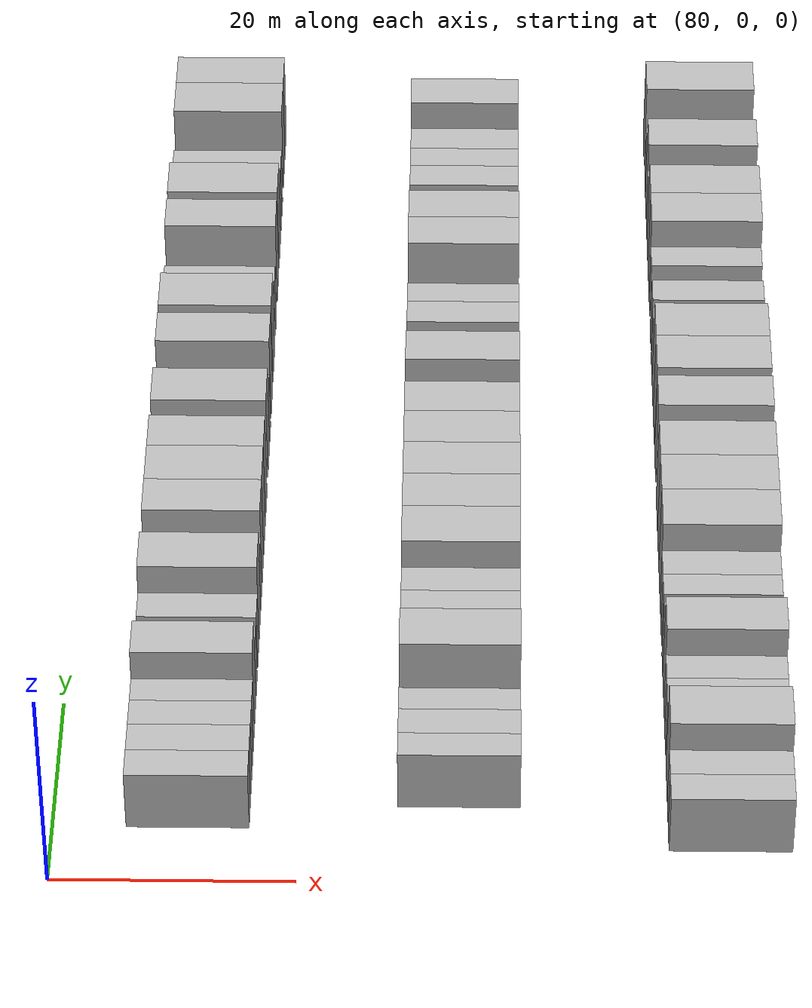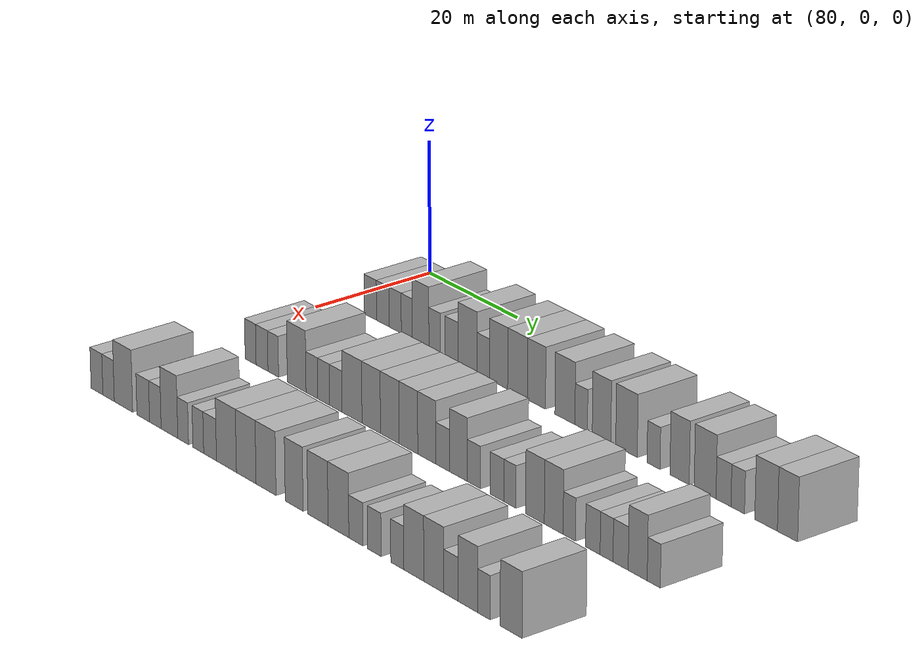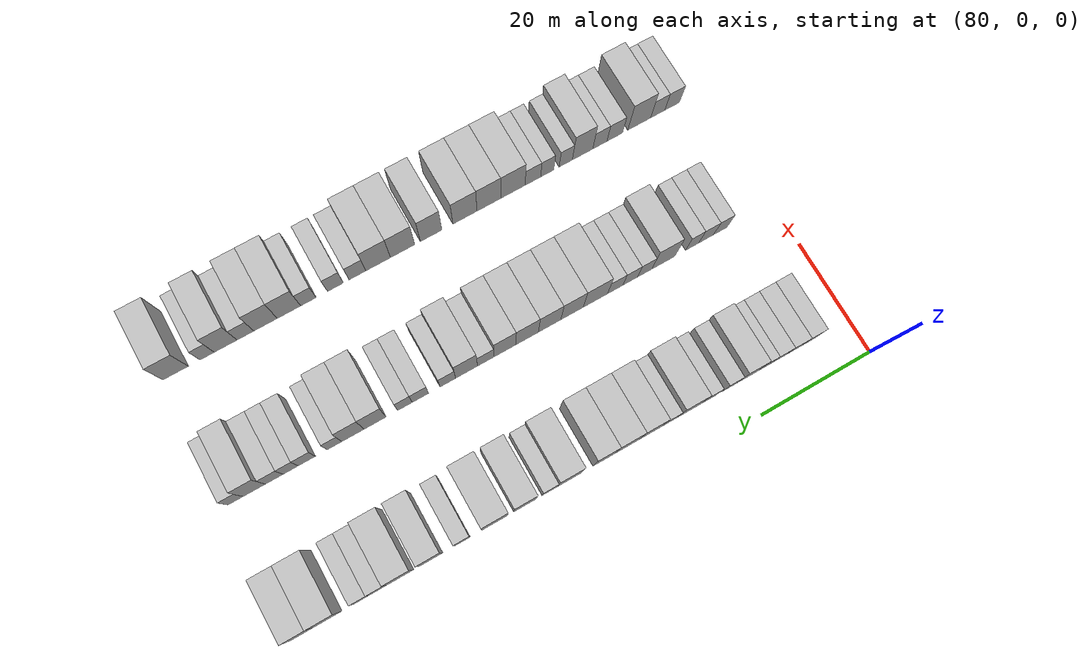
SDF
<sdf version="1.6">
 <world name="default">
  <model name="building_672">
   <static>1</static>
   <pose>91.0000 7.3659 0 0.000000 0.000000 0.000000</pose>
   <link name="link">
    <pose>0 0 3.00 0 0 0</pose>
    <collision name="collision"><geometry><box><size>10.0000 2.8665 6.0000</size></box></geometry></collision>
    <visual name="visual">
     <cast_shadows>0</cast_shadows>
     <geometry><box><size>10.0000 2.8665 6.0000</size></box></geometry>
     <material>
      <script>
       <uri>model://HANNAS_wall/materials/scripts</uri>
       <uri>model://HANNAS_wall/materials/textures</uri>
       <name>vrc/HANNAS_wall</name>
      </script>
     </material>
    </visual>
   </link>
  </model>
  <model name="building_673">
   <static>1</static>
   <pose>91.0000 10.2748 0 0.000000 0.000000 0.000000</pose>
   <link name="link">
    <pose>0 0 3.00 0 0 0</pose>
    <collision name="collision"><geometry><box><size>10.0000 2.9513 6.0000</size></box></geometry></collision>
    <visual name="visual">
     <cast_shadows>0</cast_shadows>
     <geometry><box><size>10.0000 2.9513 6.0000</size></box></geometry>
     <material>
      <script>
       <uri>model://HANNAS_wall/materials/scripts</uri>
       <uri>model://HANNAS_wall/materials/textures</uri>
       <name>vrc/HANNAS_wall</name>
      </script>
     </material>
    </visual>
   </link>
  </model>
  <model name="building_674">
   <static>1</static>
   <pose>91.0000 13.1142 0 0.000000 0.000000 0.000000</pose>
   <link name="link">
    <pose>0 0 3.00 0 0 0</pose>
    <collision name="collision"><geometry><box><size>10.0000 2.7276 6.0000</size></box></geometry></collision>
    <visual name="visual">
     <cast_shadows>0</cast_shadows>
     <geometry><box><size>10.0000 2.7276 6.0000</size></box></geometry>
     <material>
      <script>
       <uri>model://HANNAS_wall/materials/scripts</uri>
       <uri>model://HANNAS_wall/materials/textures</uri>
       <name>vrc/HANNAS_wall</name>
      </script>
     </material>
    </visual>
   </link>
  </model>
  <model name="building_675">
   <static>1</static>
   <pose>91.0000 15.7376 0 0.000000 0.000000 0.000000</pose>
   <link name="link">
    <pose>0 0 3.00 0 0 0</pose>
    <collision name="collision"><geometry><box><size>10.0000 2.5192 6.0000</size></box></geometry></collision>
    <visual name="visual">
     <cast_shadows>0</cast_shadows>
     <geometry><box><size>10.0000 2.5192 6.0000</size></box></geometry>
     <material>
      <script>
       <uri>model://HANNAS_wall/materials/scripts</uri>
       <uri>model://HANNAS_wall/materials/textures</uri>
       <name>vrc/HANNAS_wall</name>
      </script>
     </material>
    </visual>
   </link>
  </model>
  <model name="building_676">
   <static>1</static>
   <pose>91.0000 18.8639 0 0.000000 0.000000 0.000000</pose>
   <link name="link">
    <pose>0 0 4.50 0 0 0</pose>
    <collision name="collision"><geometry><box><size>10.0000 3.7335 9.0000</size></box></geometry></collision>
    <visual name="visual">
     <cast_shadows>0</cast_shadows>
     <geometry><box><size>10.0000 3.7335 9.0000</size></box></geometry>
     <material>
      <script>
       <uri>model://HANNAS_wall/materials/scripts</uri>
       <uri>model://HANNAS_wall/materials/textures</uri>
       <name>vrc/HANNAS_wall</name>
      </script>
     </material>
    </visual>
   </link>
  </model>
  <model name="building_677">
   <static>1</static>
   <pose>91.0000 22.0341 0 0.000000 0.000000 0.000000</pose>
   <link name="link">
    <pose>0 0 3.00 0 0 0</pose>
    <collision name="collision"><geometry><box><size>10.0000 2.6068 6.0000</size></box></geometry></collision>
    <visual name="visual">
     <cast_shadows>0</cast_shadows>
     <geometry><box><size>10.0000 2.6068 6.0000</size></box></geometry>
     <material>
      <script>
       <uri>model://HANNAS_wall/materials/scripts</uri>
       <uri>model://HANNAS_wall/materials/textures</uri>
       <name>vrc/HANNAS_wall</name>
      </script>
     </material>
    </visual>
   </link>
  </model>
  <model name="building_678">
   <static>1</static>
   <pose>91.0000 25.7764 0 0.000000 0.000000 0.000000</pose>
   <link name="link">
    <pose>0 0 3.00 0 0 0</pose>
    <collision name="collision"><geometry><box><size>10.0000 2.8779 6.0000</size></box></geometry></collision>
    <visual name="visual">
     <cast_shadows>0</cast_shadows>
     <geometry><box><size>10.0000 2.8779 6.0000</size></box></geometry>
     <material>
      <script>
       <uri>model://HANNAS_wall/materials/scripts</uri>
       <uri>model://HANNAS_wall/materials/textures</uri>
       <name>vrc/HANNAS_wall</name>
      </script>
     </material>
    </visual>
   </link>
  </model>
  <model name="building_679">
   <static>1</static>
   <pose>91.0000 29.3478 0 0.000000 0.000000 0.000000</pose>
   <link name="link">
    <pose>0 0 4.50 0 0 0</pose>
    <collision name="collision"><geometry><box><size>10.0000 4.2648 9.0000</size></box></geometry></collision>
    <visual name="visual">
     <cast_shadows>0</cast_shadows>
     <geometry><box><size>10.0000 4.2648 9.0000</size></box></geometry>
     <material>
      <script>
       <uri>model://HANNAS_wall/materials/scripts</uri>
       <uri>model://HANNAS_wall/materials/textures</uri>
       <name>vrc/HANNAS_wall</name>
      </script>
     </material>
    </visual>
   </link>
  </model>
  <model name="building_680">
   <static>1</static>
   <pose>91.0000 32.8475 0 0.000000 0.000000 0.000000</pose>
   <link name="link">
    <pose>0 0 3.00 0 0 0</pose>
    <collision name="collision"><geometry><box><size>10.0000 2.7346 6.0000</size></box></geometry></collision>
    <visual name="visual">
     <cast_shadows>0</cast_shadows>
     <geometry><box><size>10.0000 2.7346 6.0000</size></box></geometry>
     <material>
      <script>
       <uri>model://HANNAS_wall/materials/scripts</uri>
       <uri>model://HANNAS_wall/materials/textures</uri>
       <name>vrc/HANNAS_wall</name>
      </script>
     </material>
    </visual>
   </link>
  </model>
  <model name="building_681">
   <static>1</static>
   <pose>91.0000 36.1782 0 0.000000 0.000000 0.000000</pose>
   <link name="link">
    <pose>0 0 4.50 0 0 0</pose>
    <collision name="collision"><geometry><box><size>10.0000 3.9270 9.0000</size></box></geometry></collision>
    <visual name="visual">
     <cast_shadows>0</cast_shadows>
     <geometry><box><size>10.0000 3.9270 9.0000</size></box></geometry>
     <material>
      <script>
       <uri>model://HANNAS_wall/materials/scripts</uri>
       <uri>model://HANNAS_wall/materials/textures</uri>
       <name>vrc/HANNAS_wall</name>
      </script>
     </material>
    </visual>
   </link>
  </model>
  <model name="building_682">
   <static>1</static>
   <pose>91.0000 40.2953 0 0.000000 0.000000 0.000000</pose>
   <link name="link">
    <pose>0 0 4.50 0 0 0</pose>
    <collision name="collision"><geometry><box><size>10.0000 4.3071 9.0000</size></box></geometry></collision>
    <visual name="visual">
     <cast_shadows>0</cast_shadows>
     <geometry><box><size>10.0000 4.3071 9.0000</size></box></geometry>
     <material>
      <script>
       <uri>model://HANNAS_wall/materials/scripts</uri>
       <uri>model://HANNAS_wall/materials/textures</uri>
       <name>vrc/HANNAS_wall</name>
      </script>
     </material>
    </visual>
   </link>
  </model>
  <model name="building_683">
   <static>1</static>
   <pose>91.0000 44.3767 0 0.000000 0.000000 0.000000</pose>
   <link name="link">
    <pose>0 0 4.50 0 0 0</pose>
    <collision name="collision"><geometry><box><size>10.0000 3.8558 9.0000</size></box></geometry></collision>
    <visual name="visual">
     <cast_shadows>0</cast_shadows>
     <geometry><box><size>10.0000 3.8558 9.0000</size></box></geometry>
     <material>
      <script>
       <uri>model://HANNAS_wall/materials/scripts</uri>
       <uri>model://HANNAS_wall/materials/textures</uri>
       <name>vrc/HANNAS_wall</name>
      </script>
     </material>
    </visual>
   </link>
  </model>
  <model name="building_684">
   <static>1</static>
   <pose>91.0000 50.4266 0 0.000000 0.000000 0.000000</pose>
   <link name="link">
    <pose>0 0 4.50 0 0 0</pose>
    <collision name="collision"><geometry><box><size>10.0000 4.2440 9.0000</size></box></geometry></collision>
    <visual name="visual">
     <cast_shadows>0</cast_shadows>
     <geometry><box><size>10.0000 4.2440 9.0000</size></box></geometry>
     <material>
      <script>
       <uri>model://HANNAS_wall/materials/scripts</uri>
       <uri>model://HANNAS_wall/materials/textures</uri>
       <name>vrc/HANNAS_wall</name>
      </script>
     </material>
    </visual>
   </link>
  </model>
  <model name="building_685">
   <static>1</static>
   <pose>91.0000 53.8652 0 0.000000 0.000000 0.000000</pose>
   <link name="link">
    <pose>0 0 3.00 0 0 0</pose>
    <collision name="collision"><geometry><box><size>10.0000 2.6331 6.0000</size></box></geometry></collision>
    <visual name="visual">
     <cast_shadows>0</cast_shadows>
     <geometry><box><size>10.0000 2.6331 6.0000</size></box></geometry>
     <material>
      <script>
       <uri>model://HANNAS_wall/materials/scripts</uri>
       <uri>model://HANNAS_wall/materials/textures</uri>
       <name>vrc/HANNAS_wall</name>
      </script>
     </material>
    </visual>
   </link>
  </model>
  <model name="building_686">
   <static>1</static>
   <pose>91.0000 58.1224 0 0.000000 0.000000 0.000000</pose>
   <link name="link">
    <pose>0 0 4.50 0 0 0</pose>
    <collision name="collision"><geometry><box><size>10.0000 3.8812 9.0000</size></box></geometry></collision>
    <visual name="visual">
     <cast_shadows>0</cast_shadows>
     <geometry><box><size>10.0000 3.8812 9.0000</size></box></geometry>
     <material>
      <script>
       <uri>model://HANNAS_wall/materials/scripts</uri>
       <uri>model://HANNAS_wall/materials/textures</uri>
       <name>vrc/HANNAS_wall</name>
      </script>
     </material>
    </visual>
   </link>
  </model>
  <model name="building_687">
   <static>1</static>
   <pose>91.0000 63.2836 0 0.000000 0.000000 0.000000</pose>
   <link name="link">
    <pose>0 0 4.50 0 0 0</pose>
    <collision name="collision"><geometry><box><size>10.0000 4.4412 9.0000</size></box></geometry></collision>
    <visual name="visual">
     <cast_shadows>0</cast_shadows>
     <geometry><box><size>10.0000 4.4412 9.0000</size></box></geometry>
     <material>
      <script>
       <uri>model://HANNAS_wall/materials/scripts</uri>
       <uri>model://HANNAS_wall/materials/textures</uri>
       <name>vrc/HANNAS_wall</name>
      </script>
     </material>
    </visual>
   </link>
  </model>
  <model name="building_688">
   <static>1</static>
   <pose>91.0000 68.8301 0 0.000000 0.000000 0.000000</pose>
   <link name="link">
    <pose>0 0 3.00 0 0 0</pose>
    <collision name="collision"><geometry><box><size>10.0000 2.6518 6.0000</size></box></geometry></collision>
    <visual name="visual">
     <cast_shadows>0</cast_shadows>
     <geometry><box><size>10.0000 2.6518 6.0000</size></box></geometry>
     <material>
      <script>
       <uri>model://HANNAS_wall/materials/scripts</uri>
       <uri>model://HANNAS_wall/materials/textures</uri>
       <name>vrc/HANNAS_wall</name>
      </script>
     </material>
    </visual>
   </link>
  </model>
  <model name="building_689">
   <static>1</static>
   <pose>91.0000 74.0928 0 0.000000 0.000000 0.000000</pose>
   <link name="link">
    <pose>0 0 4.50 0 0 0</pose>
    <collision name="collision"><geometry><box><size>10.0000 3.8736 9.0000</size></box></geometry></collision>
    <visual name="visual">
     <cast_shadows>0</cast_shadows>
     <geometry><box><size>10.0000 3.8736 9.0000</size></box></geometry>
     <material>
      <script>
       <uri>model://HANNAS_wall/materials/scripts</uri>
       <uri>model://HANNAS_wall/materials/textures</uri>
       <name>vrc/HANNAS_wall</name>
      </script>
     </material>
    </visual>
   </link>
  </model>
  <model name="building_690">
   <static>1</static>
   <pose>91.0000 79.1997 0 0.000000 0.000000 0.000000</pose>
   <link name="link">
    <pose>0 0 4.50 0 0 0</pose>
    <collision name="collision"><geometry><box><size>10.0000 4.3402 9.0000</size></box></geometry></collision>
    <visual name="visual">
     <cast_shadows>0</cast_shadows>
     <geometry><box><size>10.0000 4.3402 9.0000</size></box></geometry>
     <material>
      <script>
       <uri>model://HANNAS_wall/materials/scripts</uri>
       <uri>model://HANNAS_wall/materials/textures</uri>
       <name>vrc/HANNAS_wall</name>
      </script>
     </material>
    </visual>
   </link>
  </model>
  <model name="building_691">
   <static>1</static>
   <pose>91.0000 82.8485 0 0.000000 0.000000 0.000000</pose>
   <link name="link">
    <pose>0 0 3.00 0 0 0</pose>
    <collision name="collision"><geometry><box><size>10.0000 2.9575 6.0000</size></box></geometry></collision>
    <visual name="visual">
     <cast_shadows>0</cast_shadows>
     <geometry><box><size>10.0000 2.9575 6.0000</size></box></geometry>
     <material>
      <script>
       <uri>model://HANNAS_wall/materials/scripts</uri>
       <uri>model://HANNAS_wall/materials/textures</uri>
       <name>vrc/HANNAS_wall</name>
      </script>
     </material>
    </visual>
   </link>
  </model>
  <model name="building_692">
   <static>1</static>
   <pose>91.0000 85.6604 0 0.000000 0.000000 0.000000</pose>
   <link name="link">
    <pose>0 0 3.00 0 0 0</pose>
    <collision name="collision"><geometry><box><size>10.0000 2.6662 6.0000</size></box></geometry></collision>
    <visual name="visual">
     <cast_shadows>0</cast_shadows>
     <geometry><box><size>10.0000 2.6662 6.0000</size></box></geometry>
     <material>
      <script>
       <uri>model://HANNAS_wall/materials/scripts</uri>
       <uri>model://HANNAS_wall/materials/textures</uri>
       <name>vrc/HANNAS_wall</name>
      </script>
     </material>
    </visual>
   </link>
  </model>
  <model name="building_693">
   <static>1</static>
   <pose>91.0000 91.1863 0 0.000000 0.000000 0.000000</pose>
   <link name="link">
    <pose>0 0 4.50 0 0 0</pose>
    <collision name="collision"><geometry><box><size>10.0000 4.3855 9.0000</size></box></geometry></collision>
    <visual name="visual">
     <cast_shadows>0</cast_shadows>
     <geometry><box><size>10.0000 4.3855 9.0000</size></box></geometry>
     <material>
      <script>
       <uri>model://HANNAS_wall/materials/scripts</uri>
       <uri>model://HANNAS_wall/materials/textures</uri>
       <name>vrc/HANNAS_wall</name>
      </script>
     </material>
    </visual>
   </link>
  </model>
  <model name="building_694">
   <static>1</static>
   <pose>91.0000 95.3275 0 0.000000 0.000000 0.000000</pose>
   <link name="link">
    <pose>0 0 4.50 0 0 0</pose>
    <collision name="collision"><geometry><box><size>10.0000 3.8969 9.0000</size></box></geometry></collision>
    <visual name="visual">
     <cast_shadows>0</cast_shadows>
     <geometry><box><size>10.0000 3.8969 9.0000</size></box></geometry>
     <material>
      <script>
       <uri>model://HANNAS_wall/materials/scripts</uri>
       <uri>model://HANNAS_wall/materials/textures</uri>
       <name>vrc/HANNAS_wall</name>
      </script>
     </material>
    </visual>
   </link>
  </model>
  <model name="building_872">
   <static>1</static>
   <pose>113.0000 9.7076 0 0.000000 0.000000 0.000000</pose>
   <link name="link">
    <pose>0 0 3.00 0 0 0</pose>
    <collision name="collision"><geometry><box><size>10.0000 2.5542 6.0000</size></box></geometry></collision>
    <visual name="visual">
     <cast_shadows>0</cast_shadows>
     <geometry><box><size>10.0000 2.5542 6.0000</size></box></geometry>
     <material>
      <script>
       <uri>model://HANNAS_wall/materials/scripts</uri>
       <uri>model://HANNAS_wall/materials/textures</uri>
       <name>vrc/HANNAS_wall</name>
      </script>
     </material>
    </visual>
   </link>
  </model>
  <model name="building_873">
   <static>1</static>
   <pose>113.0000 12.3636 0 0.000000 0.000000 0.000000</pose>
   <link name="link">
    <pose>0 0 3.00 0 0 0</pose>
    <collision name="collision"><geometry><box><size>10.0000 2.7579 6.0000</size></box></geometry></collision>
    <visual name="visual">
     <cast_shadows>0</cast_shadows>
     <geometry><box><size>10.0000 2.7579 6.0000</size></box></geometry>
     <material>
      <script>
       <uri>model://HANNAS_wall/materials/scripts</uri>
       <uri>model://HANNAS_wall/materials/textures</uri>
       <name>vrc/HANNAS_wall</name>
      </script>
     </material>
    </visual>
   </link>
  </model>
  <model name="building_874">
   <static>1</static>
   <pose>113.0000 14.9668 0 0.000000 0.000000 0.000000</pose>
   <link name="link">
    <pose>0 0 3.00 0 0 0</pose>
    <collision name="collision"><geometry><box><size>10.0000 2.4485 6.0000</size></box></geometry></collision>
    <visual name="visual">
     <cast_shadows>0</cast_shadows>
     <geometry><box><size>10.0000 2.4485 6.0000</size></box></geometry>
     <material>
      <script>
       <uri>model://HANNAS_wall/materials/scripts</uri>
       <uri>model://HANNAS_wall/materials/textures</uri>
       <name>vrc/HANNAS_wall</name>
      </script>
     </material>
    </visual>
   </link>
  </model>
  <model name="building_875">
   <static>1</static>
   <pose>113.0000 20.3303 0 0.000000 0.000000 0.000000</pose>
   <link name="link">
    <pose>0 0 4.50 0 0 0</pose>
    <collision name="collision"><geometry><box><size>10.0000 4.2785 9.0000</size></box></geometry></collision>
    <visual name="visual">
     <cast_shadows>0</cast_shadows>
     <geometry><box><size>10.0000 4.2785 9.0000</size></box></geometry>
     <material>
      <script>
       <uri>model://HANNAS_wall/materials/scripts</uri>
       <uri>model://HANNAS_wall/materials/textures</uri>
       <name>vrc/HANNAS_wall</name>
      </script>
     </material>
    </visual>
   </link>
  </model>
  <model name="building_876">
   <static>1</static>
   <pose>113.0000 23.7928 0 0.000000 0.000000 0.000000</pose>
   <link name="link">
    <pose>0 0 3.00 0 0 0</pose>
    <collision name="collision"><geometry><box><size>10.0000 2.6465 6.0000</size></box></geometry></collision>
    <visual name="visual">
     <cast_shadows>0</cast_shadows>
     <geometry><box><size>10.0000 2.6465 6.0000</size></box></geometry>
     <material>
      <script>
       <uri>model://HANNAS_wall/materials/scripts</uri>
       <uri>model://HANNAS_wall/materials/textures</uri>
       <name>vrc/HANNAS_wall</name>
      </script>
     </material>
    </visual>
   </link>
  </model>
  <model name="building_877">
   <static>1</static>
   <pose>113.0000 26.4538 0 0.000000 0.000000 0.000000</pose>
   <link name="link">
    <pose>0 0 3.00 0 0 0</pose>
    <collision name="collision"><geometry><box><size>10.0000 2.6756 6.0000</size></box></geometry></collision>
    <visual name="visual">
     <cast_shadows>0</cast_shadows>
     <geometry><box><size>10.0000 2.6756 6.0000</size></box></geometry>
     <material>
      <script>
       <uri>model://HANNAS_wall/materials/scripts</uri>
       <uri>model://HANNAS_wall/materials/textures</uri>
       <name>vrc/HANNAS_wall</name>
      </script>
     </material>
    </visual>
   </link>
  </model>
  <model name="building_878">
   <static>1</static>
   <pose>113.0000 29.1952 0 0.000000 0.000000 0.000000</pose>
   <link name="link">
    <pose>0 0 3.00 0 0 0</pose>
    <collision name="collision"><geometry><box><size>10.0000 2.8073 6.0000</size></box></geometry></collision>
    <visual name="visual">
     <cast_shadows>0</cast_shadows>
     <geometry><box><size>10.0000 2.8073 6.0000</size></box></geometry>
     <material>
      <script>
       <uri>model://HANNAS_wall/materials/scripts</uri>
       <uri>model://HANNAS_wall/materials/textures</uri>
       <name>vrc/HANNAS_wall</name>
      </script>
     </material>
    </visual>
   </link>
  </model>
  <model name="building_879">
   <static>1</static>
   <pose>113.0000 32.8075 0 0.000000 0.000000 0.000000</pose>
   <link name="link">
    <pose>0 0 4.50 0 0 0</pose>
    <collision name="collision"><geometry><box><size>10.0000 4.4172 9.0000</size></box></geometry></collision>
    <visual name="visual">
     <cast_shadows>0</cast_shadows>
     <geometry><box><size>10.0000 4.4172 9.0000</size></box></geometry>
     <material>
      <script>
       <uri>model://HANNAS_wall/materials/scripts</uri>
       <uri>model://HANNAS_wall/materials/textures</uri>
       <name>vrc/HANNAS_wall</name>
      </script>
     </material>
    </visual>
   </link>
  </model>
  <model name="building_880">
   <static>1</static>
   <pose>113.0000 37.0521 0 0.000000 0.000000 0.000000</pose>
   <link name="link">
    <pose>0 0 4.50 0 0 0</pose>
    <collision name="collision"><geometry><box><size>10.0000 4.0720 9.0000</size></box></geometry></collision>
    <visual name="visual">
     <cast_shadows>0</cast_shadows>
     <geometry><box><size>10.0000 4.0720 9.0000</size></box></geometry>
     <material>
      <script>
       <uri>model://HANNAS_wall/materials/scripts</uri>
       <uri>model://HANNAS_wall/materials/textures</uri>
       <name>vrc/HANNAS_wall</name>
      </script>
     </material>
    </visual>
   </link>
  </model>
  <model name="building_881">
   <static>1</static>
   <pose>113.0000 41.1097 0 0.000000 0.000000 0.000000</pose>
   <link name="link">
    <pose>0 0 4.50 0 0 0</pose>
    <collision name="collision"><geometry><box><size>10.0000 4.0433 9.0000</size></box></geometry></collision>
    <visual name="visual">
     <cast_shadows>0</cast_shadows>
     <geometry><box><size>10.0000 4.0433 9.0000</size></box></geometry>
     <material>
      <script>
       <uri>model://HANNAS_wall/materials/scripts</uri>
       <uri>model://HANNAS_wall/materials/textures</uri>
       <name>vrc/HANNAS_wall</name>
      </script>
     </material>
    </visual>
   </link>
  </model>
  <model name="building_882">
   <static>1</static>
   <pose>113.0000 45.1651 0 0.000000 0.000000 0.000000</pose>
   <link name="link">
    <pose>0 0 4.50 0 0 0</pose>
    <collision name="collision"><geometry><box><size>10.0000 4.0676 9.0000</size></box></geometry></collision>
    <visual name="visual">
     <cast_shadows>0</cast_shadows>
     <geometry><box><size>10.0000 4.0676 9.0000</size></box></geometry>
     <material>
      <script>
       <uri>model://HANNAS_wall/materials/scripts</uri>
       <uri>model://HANNAS_wall/materials/textures</uri>
       <name>vrc/HANNAS_wall</name>
      </script>
     </material>
    </visual>
   </link>
  </model>
  <model name="building_883">
   <static>1</static>
   <pose>113.0000 49.1260 0 0.000000 0.000000 0.000000</pose>
   <link name="link">
    <pose>0 0 4.50 0 0 0</pose>
    <collision name="collision"><geometry><box><size>10.0000 3.8542 9.0000</size></box></geometry></collision>
    <visual name="visual">
     <cast_shadows>0</cast_shadows>
     <geometry><box><size>10.0000 3.8542 9.0000</size></box></geometry>
     <material>
      <script>
       <uri>model://HANNAS_wall/materials/scripts</uri>
       <uri>model://HANNAS_wall/materials/textures</uri>
       <name>vrc/HANNAS_wall</name>
      </script>
     </material>
    </visual>
   </link>
  </model>
  <model name="building_884">
   <static>1</static>
   <pose>113.0000 52.5088 0 0.000000 0.000000 0.000000</pose>
   <link name="link">
    <pose>0 0 3.00 0 0 0</pose>
    <collision name="collision"><geometry><box><size>10.0000 2.9114 6.0000</size></box></geometry></collision>
    <visual name="visual">
     <cast_shadows>0</cast_shadows>
     <geometry><box><size>10.0000 2.9114 6.0000</size></box></geometry>
     <material>
      <script>
       <uri>model://HANNAS_wall/materials/scripts</uri>
       <uri>model://HANNAS_wall/materials/textures</uri>
       <name>vrc/HANNAS_wall</name>
      </script>
     </material>
    </visual>
   </link>
  </model>
  <model name="building_885">
   <static>1</static>
   <pose>113.0000 55.8864 0 0.000000 0.000000 0.000000</pose>
   <link name="link">
    <pose>0 0 4.50 0 0 0</pose>
    <collision name="collision"><geometry><box><size>10.0000 3.8440 9.0000</size></box></geometry></collision>
    <visual name="visual">
     <cast_shadows>0</cast_shadows>
     <geometry><box><size>10.0000 3.8440 9.0000</size></box></geometry>
     <material>
      <script>
       <uri>model://HANNAS_wall/materials/scripts</uri>
       <uri>model://HANNAS_wall/materials/textures</uri>
       <name>vrc/HANNAS_wall</name>
      </script>
     </material>
    </visual>
   </link>
  </model>
  <model name="building_886">
   <static>1</static>
   <pose>113.0000 59.1801 0 0.000000 0.000000 0.000000</pose>
   <link name="link">
    <pose>0 0 3.00 0 0 0</pose>
    <collision name="collision"><geometry><box><size>10.0000 2.7433 6.0000</size></box></geometry></collision>
    <visual name="visual">
     <cast_shadows>0</cast_shadows>
     <geometry><box><size>10.0000 2.7433 6.0000</size></box></geometry>
     <material>
      <script>
       <uri>model://HANNAS_wall/materials/scripts</uri>
       <uri>model://HANNAS_wall/materials/textures</uri>
       <name>vrc/HANNAS_wall</name>
      </script>
     </material>
    </visual>
   </link>
  </model>
  <model name="building_887">
   <static>1</static>
   <pose>113.0000 63.9754 0 0.000000 0.000000 0.000000</pose>
   <link name="link">
    <pose>0 0 3.00 0 0 0</pose>
    <collision name="collision"><geometry><box><size>10.0000 2.8473 6.0000</size></box></geometry></collision>
    <visual name="visual">
     <cast_shadows>0</cast_shadows>
     <geometry><box><size>10.0000 2.8473 6.0000</size></box></geometry>
     <material>
      <script>
       <uri>model://HANNAS_wall/materials/scripts</uri>
       <uri>model://HANNAS_wall/materials/textures</uri>
       <name>vrc/HANNAS_wall</name>
      </script>
     </material>
    </visual>
   </link>
  </model>
  <model name="building_888">
   <static>1</static>
   <pose>113.0000 66.6607 0 0.000000 0.000000 0.000000</pose>
   <link name="link">
    <pose>0 0 3.00 0 0 0</pose>
    <collision name="collision"><geometry><box><size>10.0000 2.5233 6.0000</size></box></geometry></collision>
    <visual name="visual">
     <cast_shadows>0</cast_shadows>
     <geometry><box><size>10.0000 2.5233 6.0000</size></box></geometry>
     <material>
      <script>
       <uri>model://HANNAS_wall/materials/scripts</uri>
       <uri>model://HANNAS_wall/materials/textures</uri>
       <name>vrc/HANNAS_wall</name>
      </script>
     </material>
    </visual>
   </link>
  </model>
  <model name="building_889">
   <static>1</static>
   <pose>113.0000 71.8302 0 0.000000 0.000000 0.000000</pose>
   <link name="link">
    <pose>0 0 4.50 0 0 0</pose>
    <collision name="collision"><geometry><box><size>10.0000 3.8156 9.0000</size></box></geometry></collision>
    <visual name="visual">
     <cast_shadows>0</cast_shadows>
     <geometry><box><size>10.0000 3.8156 9.0000</size></box></geometry>
     <material>
      <script>
       <uri>model://HANNAS_wall/materials/scripts</uri>
       <uri>model://HANNAS_wall/materials/textures</uri>
       <name>vrc/HANNAS_wall</name>
      </script>
     </material>
    </visual>
   </link>
  </model>
  <model name="building_890">
   <static>1</static>
   <pose>113.0000 75.6447 0 0.000000 0.000000 0.000000</pose>
   <link name="link">
    <pose>0 0 4.50 0 0 0</pose>
    <collision name="collision"><geometry><box><size>10.0000 3.8134 9.0000</size></box></geometry></collision>
    <visual name="visual">
     <cast_shadows>0</cast_shadows>
     <geometry><box><size>10.0000 3.8134 9.0000</size></box></geometry>
     <material>
      <script>
       <uri>model://HANNAS_wall/materials/scripts</uri>
       <uri>model://HANNAS_wall/materials/textures</uri>
       <name>vrc/HANNAS_wall</name>
      </script>
     </material>
    </visual>
   </link>
  </model>
  <model name="building_891">
   <static>1</static>
   <pose>113.0000 78.8012 0 0.000000 0.000000 0.000000</pose>
   <link name="link">
    <pose>0 0 3.00 0 0 0</pose>
    <collision name="collision"><geometry><box><size>10.0000 2.4996 6.0000</size></box></geometry></collision>
    <visual name="visual">
     <cast_shadows>0</cast_shadows>
     <geometry><box><size>10.0000 2.4996 6.0000</size></box></geometry>
     <material>
      <script>
       <uri>model://HANNAS_wall/materials/scripts</uri>
       <uri>model://HANNAS_wall/materials/textures</uri>
       <name>vrc/HANNAS_wall</name>
      </script>
     </material>
    </visual>
   </link>
  </model>
  <model name="building_892">
   <static>1</static>
   <pose>113.0000 83.5011 0 0.000000 0.000000 0.000000</pose>
   <link name="link">
    <pose>0 0 3.00 0 0 0</pose>
    <collision name="collision"><geometry><box><size>10.0000 2.9002 6.0000</size></box></geometry></collision>
    <visual name="visual">
     <cast_shadows>0</cast_shadows>
     <geometry><box><size>10.0000 2.9002 6.0000</size></box></geometry>
     <material>
      <script>
       <uri>model://HANNAS_wall/materials/scripts</uri>
       <uri>model://HANNAS_wall/materials/textures</uri>
       <name>vrc/HANNAS_wall</name>
      </script>
     </material>
    </visual>
   </link>
  </model>
  <model name="building_893">
   <static>1</static>
   <pose>113.0000 86.2330 0 0.000000 0.000000 0.000000</pose>
   <link name="link">
    <pose>0 0 3.00 0 0 0</pose>
    <collision name="collision"><geometry><box><size>10.0000 2.5638 6.0000</size></box></geometry></collision>
    <visual name="visual">
     <cast_shadows>0</cast_shadows>
     <geometry><box><size>10.0000 2.5638 6.0000</size></box></geometry>
     <material>
      <script>
       <uri>model://HANNAS_wall/materials/scripts</uri>
       <uri>model://HANNAS_wall/materials/textures</uri>
       <name>vrc/HANNAS_wall</name>
      </script>
     </material>
    </visual>
   </link>
  </model>
  <model name="building_894">
   <static>1</static>
   <pose>113.0000 89.0128 0 0.000000 0.000000 0.000000</pose>
   <link name="link">
    <pose>0 0 3.00 0 0 0</pose>
    <collision name="collision"><geometry><box><size>10.0000 2.9957 6.0000</size></box></geometry></collision>
    <visual name="visual">
     <cast_shadows>0</cast_shadows>
     <geometry><box><size>10.0000 2.9957 6.0000</size></box></geometry>
     <material>
      <script>
       <uri>model://HANNAS_wall/materials/scripts</uri>
       <uri>model://HANNAS_wall/materials/textures</uri>
       <name>vrc/HANNAS_wall</name>
      </script>
     </material>
    </visual>
   </link>
  </model>
  <model name="building_895">
   <static>1</static>
   <pose>113.0000 92.3661 0 0.000000 0.000000 0.000000</pose>
   <link name="link">
    <pose>0 0 4.50 0 0 0</pose>
    <collision name="collision"><geometry><box><size>10.0000 3.7108 9.0000</size></box></geometry></collision>
    <visual name="visual">
     <cast_shadows>0</cast_shadows>
     <geometry><box><size>10.0000 3.7108 9.0000</size></box></geometry>
     <material>
      <script>
       <uri>model://HANNAS_wall/materials/scripts</uri>
       <uri>model://HANNAS_wall/materials/textures</uri>
       <name>vrc/HANNAS_wall</name>
      </script>
     </material>
    </visual>
   </link>
  </model>
  <model name="building_896">
   <static>1</static>
   <pose>113.0000 95.4916 0 0.000000 0.000000 0.000000</pose>
   <link name="link">
    <pose>0 0 3.00 0 0 0</pose>
    <collision name="collision"><geometry><box><size>10.0000 2.5403 6.0000</size></box></geometry></collision>
    <visual name="visual">
     <cast_shadows>0</cast_shadows>
     <geometry><box><size>10.0000 2.5403 6.0000</size></box></geometry>
     <material>
      <script>
       <uri>model://HANNAS_wall/materials/scripts</uri>
       <uri>model://HANNAS_wall/materials/textures</uri>
       <name>vrc/HANNAS_wall</name>
      </script>
     </material>
    </visual>
   </link>
  </model>
  <model name="building_1054">
   <static>1</static>
   <pose>135.0000 5.1390 0 0.000000 0.000000 0.000000</pose>
   <link name="link">
    <pose>0 0 3.00 0 0 0</pose>
    <collision name="collision"><geometry><box><size>10.0000 2.8247 6.0000</size></box></geometry></collision>
    <visual name="visual">
     <cast_shadows>0</cast_shadows>
     <geometry><box><size>10.0000 2.8247 6.0000</size></box></geometry>
     <material>
      <script>
       <uri>model://HANNAS_wall/materials/scripts</uri>
       <uri>model://HANNAS_wall/materials/textures</uri>
       <name>vrc/HANNAS_wall</name>
      </script>
     </material>
    </visual>
   </link>
  </model>
  <model name="building_1055">
   <static>1</static>
   <pose>135.0000 7.9064 0 0.000000 0.000000 0.000000</pose>
   <link name="link">
    <pose>0 0 3.00 0 0 0</pose>
    <collision name="collision"><geometry><box><size>10.0000 2.7101 6.0000</size></box></geometry></collision>
    <visual name="visual">
     <cast_shadows>0</cast_shadows>
     <geometry><box><size>10.0000 2.7101 6.0000</size></box></geometry>
     <material>
      <script>
       <uri>model://HANNAS_wall/materials/scripts</uri>
       <uri>model://HANNAS_wall/materials/textures</uri>
       <name>vrc/HANNAS_wall</name>
      </script>
     </material>
    </visual>
   </link>
  </model>
  <model name="building_1056">
   <static>1</static>
   <pose>135.0000 11.4311 0 0.000000 0.000000 0.000000</pose>
   <link name="link">
    <pose>0 0 4.50 0 0 0</pose>
    <collision name="collision"><geometry><box><size>10.0000 4.3391 9.0000</size></box></geometry></collision>
    <visual name="visual">
     <cast_shadows>0</cast_shadows>
     <geometry><box><size>10.0000 4.3391 9.0000</size></box></geometry>
     <material>
      <script>
       <uri>model://HANNAS_wall/materials/scripts</uri>
       <uri>model://HANNAS_wall/materials/textures</uri>
       <name>vrc/HANNAS_wall</name>
      </script>
     </material>
    </visual>
   </link>
  </model>
  <model name="building_1057">
   <static>1</static>
   <pose>135.0000 16.0766 0 0.000000 0.000000 0.000000</pose>
   <link name="link">
    <pose>0 0 3.00 0 0 0</pose>
    <collision name="collision"><geometry><box><size>10.0000 2.9520 6.0000</size></box></geometry></collision>
    <visual name="visual">
     <cast_shadows>0</cast_shadows>
     <geometry><box><size>10.0000 2.9520 6.0000</size></box></geometry>
     <material>
      <script>
       <uri>model://HANNAS_wall/materials/scripts</uri>
       <uri>model://HANNAS_wall/materials/textures</uri>
       <name>vrc/HANNAS_wall</name>
      </script>
     </material>
    </visual>
   </link>
  </model>
  <model name="building_1058">
   <static>1</static>
   <pose>135.0000 18.8949 0 0.000000 0.000000 0.000000</pose>
   <link name="link">
    <pose>0 0 3.00 0 0 0</pose>
    <collision name="collision"><geometry><box><size>10.0000 2.6846 6.0000</size></box></geometry></collision>
    <visual name="visual">
     <cast_shadows>0</cast_shadows>
     <geometry><box><size>10.0000 2.6846 6.0000</size></box></geometry>
     <material>
      <script>
       <uri>model://HANNAS_wall/materials/scripts</uri>
       <uri>model://HANNAS_wall/materials/textures</uri>
       <name>vrc/HANNAS_wall</name>
      </script>
     </material>
    </visual>
   </link>
  </model>
  <model name="building_1059">
   <static>1</static>
   <pose>135.0000 22.1620 0 0.000000 0.000000 0.000000</pose>
   <link name="link">
    <pose>0 0 4.50 0 0 0</pose>
    <collision name="collision"><geometry><box><size>10.0000 3.8495 9.0000</size></box></geometry></collision>
    <visual name="visual">
     <cast_shadows>0</cast_shadows>
     <geometry><box><size>10.0000 3.8495 9.0000</size></box></geometry>
     <material>
      <script>
       <uri>model://HANNAS_wall/materials/scripts</uri>
       <uri>model://HANNAS_wall/materials/textures</uri>
       <name>vrc/HANNAS_wall</name>
      </script>
     </material>
    </visual>
   </link>
  </model>
  <model name="building_1060">
   <static>1</static>
   <pose>135.0000 25.3182 0 0.000000 0.000000 0.000000</pose>
   <link name="link">
    <pose>0 0 3.00 0 0 0</pose>
    <collision name="collision"><geometry><box><size>10.0000 2.4630 6.0000</size></box></geometry></collision>
    <visual name="visual">
     <cast_shadows>0</cast_shadows>
     <geometry><box><size>10.0000 2.4630 6.0000</size></box></geometry>
     <material>
      <script>
       <uri>model://HANNAS_wall/materials/scripts</uri>
       <uri>model://HANNAS_wall/materials/textures</uri>
       <name>vrc/HANNAS_wall</name>
      </script>
     </material>
    </visual>
   </link>
  </model>
  <model name="building_1061">
   <static>1</static>
   <pose>135.0000 28.7732 0 0.000000 0.000000 0.000000</pose>
   <link name="link">
    <pose>0 0 3.00 0 0 0</pose>
    <collision name="collision"><geometry><box><size>10.0000 2.4469 6.0000</size></box></geometry></collision>
    <visual name="visual">
     <cast_shadows>0</cast_shadows>
     <geometry><box><size>10.0000 2.4469 6.0000</size></box></geometry>
     <material>
      <script>
       <uri>model://HANNAS_wall/materials/scripts</uri>
       <uri>model://HANNAS_wall/materials/textures</uri>
       <name>vrc/HANNAS_wall</name>
      </script>
     </material>
    </visual>
   </link>
  </model>
  <model name="building_1062">
   <static>1</static>
   <pose>135.0000 31.4451 0 0.000000 0.000000 0.000000</pose>
   <link name="link">
    <pose>0 0 3.00 0 0 0</pose>
    <collision name="collision"><geometry><box><size>10.0000 2.8969 6.0000</size></box></geometry></collision>
    <visual name="visual">
     <cast_shadows>0</cast_shadows>
     <geometry><box><size>10.0000 2.8969 6.0000</size></box></geometry>
     <material>
      <script>
       <uri>model://HANNAS_wall/materials/scripts</uri>
       <uri>model://HANNAS_wall/materials/textures</uri>
       <name>vrc/HANNAS_wall</name>
      </script>
     </material>
    </visual>
   </link>
  </model>
  <model name="building_1063">
   <static>1</static>
   <pose>135.0000 35.1337 0 0.000000 0.000000 0.000000</pose>
   <link name="link">
    <pose>0 0 4.50 0 0 0</pose>
    <collision name="collision"><geometry><box><size>10.0000 4.4802 9.0000</size></box></geometry></collision>
    <visual name="visual">
     <cast_shadows>0</cast_shadows>
     <geometry><box><size>10.0000 4.4802 9.0000</size></box></geometry>
     <material>
      <script>
       <uri>model://HANNAS_wall/materials/scripts</uri>
       <uri>model://HANNAS_wall/materials/textures</uri>
       <name>vrc/HANNAS_wall</name>
      </script>
     </material>
    </visual>
   </link>
  </model>
  <model name="building_1064">
   <static>1</static>
   <pose>135.0000 39.5593 0 0.000000 0.000000 0.000000</pose>
   <link name="link">
    <pose>0 0 4.50 0 0 0</pose>
    <collision name="collision"><geometry><box><size>10.0000 4.3711 9.0000</size></box></geometry></collision>
    <visual name="visual">
     <cast_shadows>0</cast_shadows>
     <geometry><box><size>10.0000 4.3711 9.0000</size></box></geometry>
     <material>
      <script>
       <uri>model://HANNAS_wall/materials/scripts</uri>
       <uri>model://HANNAS_wall/materials/textures</uri>
       <name>vrc/HANNAS_wall</name>
      </script>
     </material>
    </visual>
   </link>
  </model>
  <model name="building_1065">
   <static>1</static>
   <pose>135.0000 43.9440 0 0.000000 0.000000 0.000000</pose>
   <link name="link">
    <pose>0 0 4.50 0 0 0</pose>
    <collision name="collision"><geometry><box><size>10.0000 4.3982 9.0000</size></box></geometry></collision>
    <visual name="visual">
     <cast_shadows>0</cast_shadows>
     <geometry><box><size>10.0000 4.3982 9.0000</size></box></geometry>
     <material>
      <script>
       <uri>model://HANNAS_wall/materials/scripts</uri>
       <uri>model://HANNAS_wall/materials/textures</uri>
       <name>vrc/HANNAS_wall</name>
      </script>
     </material>
    </visual>
   </link>
  </model>
  <model name="building_1066">
   <static>1</static>
   <pose>135.0000 50.0944 0 0.000000 0.000000 0.000000</pose>
   <link name="link">
    <pose>0 0 4.50 0 0 0</pose>
    <collision name="collision"><geometry><box><size>10.0000 3.9027 9.0000</size></box></geometry></collision>
    <visual name="visual">
     <cast_shadows>0</cast_shadows>
     <geometry><box><size>10.0000 3.9027 9.0000</size></box></geometry>
     <material>
      <script>
       <uri>model://HANNAS_wall/materials/scripts</uri>
       <uri>model://HANNAS_wall/materials/textures</uri>
       <name>vrc/HANNAS_wall</name>
      </script>
     </material>
    </visual>
   </link>
  </model>
  <model name="building_1067">
   <static>1</static>
   <pose>135.0000 55.2291 0 0.000000 0.000000 0.000000</pose>
   <link name="link">
    <pose>0 0 4.50 0 0 0</pose>
    <collision name="collision"><geometry><box><size>10.0000 4.3666 9.0000</size></box></geometry></collision>
    <visual name="visual">
     <cast_shadows>0</cast_shadows>
     <geometry><box><size>10.0000 4.3666 9.0000</size></box></geometry>
     <material>
      <script>
       <uri>model://HANNAS_wall/materials/scripts</uri>
       <uri>model://HANNAS_wall/materials/textures</uri>
       <name>vrc/HANNAS_wall</name>
      </script>
     </material>
    </visual>
   </link>
  </model>
  <model name="building_1068">
   <static>1</static>
   <pose>135.0000 59.6192 0 0.000000 0.000000 0.000000</pose>
   <link name="link">
    <pose>0 0 4.50 0 0 0</pose>
    <collision name="collision"><geometry><box><size>10.0000 4.4137 9.0000</size></box></geometry></collision>
    <visual name="visual">
     <cast_shadows>0</cast_shadows>
     <geometry><box><size>10.0000 4.4137 9.0000</size></box></geometry>
     <material>
      <script>
       <uri>model://HANNAS_wall/materials/scripts</uri>
       <uri>model://HANNAS_wall/materials/textures</uri>
       <name>vrc/HANNAS_wall</name>
      </script>
     </material>
    </visual>
   </link>
  </model>
  <model name="building_1069">
   <static>1</static>
   <pose>135.0000 63.3151 0 0.000000 0.000000 0.000000</pose>
   <link name="link">
    <pose>0 0 3.00 0 0 0</pose>
    <collision name="collision"><geometry><box><size>10.0000 2.9781 6.0000</size></box></geometry></collision>
    <visual name="visual">
     <cast_shadows>0</cast_shadows>
     <geometry><box><size>10.0000 2.9781 6.0000</size></box></geometry>
     <material>
      <script>
       <uri>model://HANNAS_wall/materials/scripts</uri>
       <uri>model://HANNAS_wall/materials/textures</uri>
       <name>vrc/HANNAS_wall</name>
      </script>
     </material>
    </visual>
   </link>
  </model>
  <model name="building_1070">
   <static>1</static>
   <pose>135.0000 67.2108 0 0.000000 0.000000 0.000000</pose>
   <link name="link">
    <pose>0 0 3.00 0 0 0</pose>
    <collision name="collision"><geometry><box><size>10.0000 2.8134 6.0000</size></box></geometry></collision>
    <visual name="visual">
     <cast_shadows>0</cast_shadows>
     <geometry><box><size>10.0000 2.8134 6.0000</size></box></geometry>
     <material>
      <script>
       <uri>model://HANNAS_wall/materials/scripts</uri>
       <uri>model://HANNAS_wall/materials/textures</uri>
       <name>vrc/HANNAS_wall</name>
      </script>
     </material>
    </visual>
   </link>
  </model>
  <model name="building_1071">
   <static>1</static>
   <pose>135.0000 71.9746 0 0.000000 0.000000 0.000000</pose>
   <link name="link">
    <pose>0 0 3.00 0 0 0</pose>
    <collision name="collision"><geometry><box><size>10.0000 2.7142 6.0000</size></box></geometry></collision>
    <visual name="visual">
     <cast_shadows>0</cast_shadows>
     <geometry><box><size>10.0000 2.7142 6.0000</size></box></geometry>
     <material>
      <script>
       <uri>model://HANNAS_wall/materials/scripts</uri>
       <uri>model://HANNAS_wall/materials/textures</uri>
       <name>vrc/HANNAS_wall</name>
      </script>
     </material>
    </visual>
   </link>
  </model>
  <model name="building_1072">
   <static>1</static>
   <pose>135.0000 75.3742 0 0.000000 0.000000 0.000000</pose>
   <link name="link">
    <pose>0 0 4.50 0 0 0</pose>
    <collision name="collision"><geometry><box><size>10.0000 4.0848 9.0000</size></box></geometry></collision>
    <visual name="visual">
     <cast_shadows>0</cast_shadows>
     <geometry><box><size>10.0000 4.0848 9.0000</size></box></geometry>
     <material>
      <script>
       <uri>model://HANNAS_wall/materials/scripts</uri>
       <uri>model://HANNAS_wall/materials/textures</uri>
       <name>vrc/HANNAS_wall</name>
      </script>
     </material>
    </visual>
   </link>
  </model>
  <model name="building_1073">
   <static>1</static>
   <pose>135.0000 79.4636 0 0.000000 0.000000 0.000000</pose>
   <link name="link">
    <pose>0 0 4.50 0 0 0</pose>
    <collision name="collision"><geometry><box><size>10.0000 4.0942 9.0000</size></box></geometry></collision>
    <visual name="visual">
     <cast_shadows>0</cast_shadows>
     <geometry><box><size>10.0000 4.0942 9.0000</size></box></geometry>
     <material>
      <script>
       <uri>model://HANNAS_wall/materials/scripts</uri>
       <uri>model://HANNAS_wall/materials/textures</uri>
       <name>vrc/HANNAS_wall</name>
      </script>
     </material>
    </visual>
   </link>
  </model>
  <model name="building_1074">
   <static>1</static>
   <pose>135.0000 82.9651 0 0.000000 0.000000 0.000000</pose>
   <link name="link">
    <pose>0 0 3.00 0 0 0</pose>
    <collision name="collision"><geometry><box><size>10.0000 2.9087 6.0000</size></box></geometry></collision>
    <visual name="visual">
     <cast_shadows>0</cast_shadows>
     <geometry><box><size>10.0000 2.9087 6.0000</size></box></geometry>
     <material>
      <script>
       <uri>model://HANNAS_wall/materials/scripts</uri>
       <uri>model://HANNAS_wall/materials/textures</uri>
       <name>vrc/HANNAS_wall</name>
      </script>
     </material>
    </visual>
   </link>
  </model>
  <model name="building_1075">
   <static>1</static>
   <pose>135.0000 86.3837 0 0.000000 0.000000 0.000000</pose>
   <link name="link">
    <pose>0 0 4.50 0 0 0</pose>
    <collision name="collision"><geometry><box><size>10.0000 3.9286 9.0000</size></box></geometry></collision>
    <visual name="visual">
     <cast_shadows>0</cast_shadows>
     <geometry><box><size>10.0000 3.9286 9.0000</size></box></geometry>
     <material>
      <script>
       <uri>model://HANNAS_wall/materials/scripts</uri>
       <uri>model://HANNAS_wall/materials/textures</uri>
       <name>vrc/HANNAS_wall</name>
      </script>
     </material>
    </visual>
   </link>
  </model>
  <model name="building_1076">
   <static>1</static>
   <pose>135.0000 89.5701 0 0.000000 0.000000 0.000000</pose>
   <link name="link">
    <pose>0 0 3.00 0 0 0</pose>
    <collision name="collision"><geometry><box><size>10.0000 2.4441 6.0000</size></box></geometry></collision>
    <visual name="visual">
     <cast_shadows>0</cast_shadows>
     <geometry><box><size>10.0000 2.4441 6.0000</size></box></geometry>
     <material>
      <script>
       <uri>model://HANNAS_wall/materials/scripts</uri>
       <uri>model://HANNAS_wall/materials/textures</uri>
       <name>vrc/HANNAS_wall</name>
      </script>
     </material>
    </visual>
   </link>
  </model>
  <model name="building_1077">
   <static>1</static>
   <pose>135.0000 94.9395 0 0.000000 0.000000 0.000000</pose>
   <link name="link">
    <pose>0 0 4.50 0 0 0</pose>
    <collision name="collision"><geometry><box><size>10.0000 4.2946 9.0000</size></box></geometry></collision>
    <visual name="visual">
     <cast_shadows>0</cast_shadows>
     <geometry><box><size>10.0000 4.2946 9.0000</size></box></geometry>
     <material>
      <script>
       <uri>model://HANNAS_wall/materials/scripts</uri>
       <uri>model://HANNAS_wall/materials/textures</uri>
       <name>vrc/HANNAS_wall</name>
      </script>
     </material>
    </visual>
   </link>
  </model>
 </world>
</sdf>
